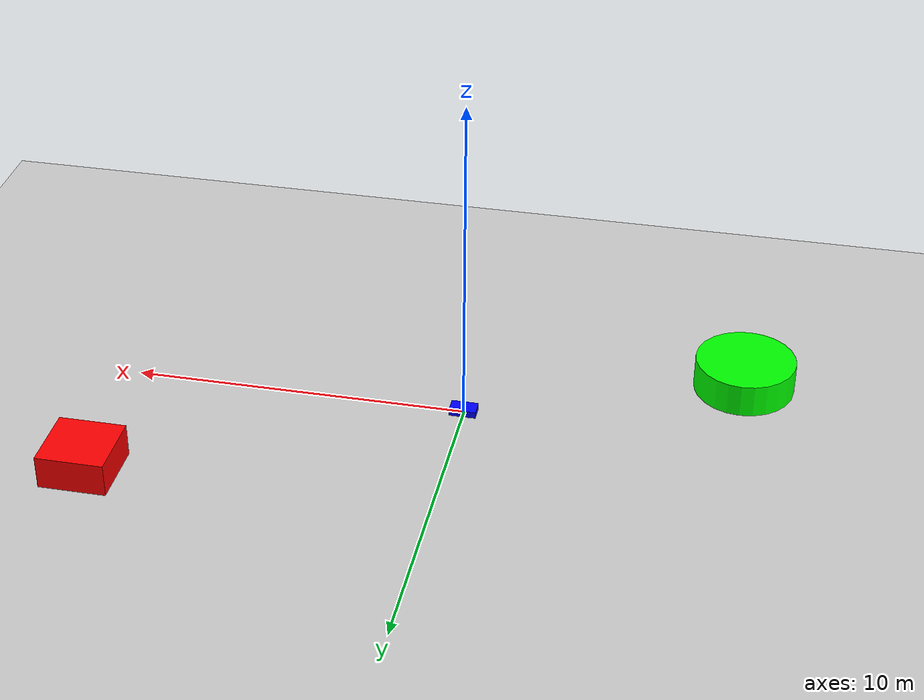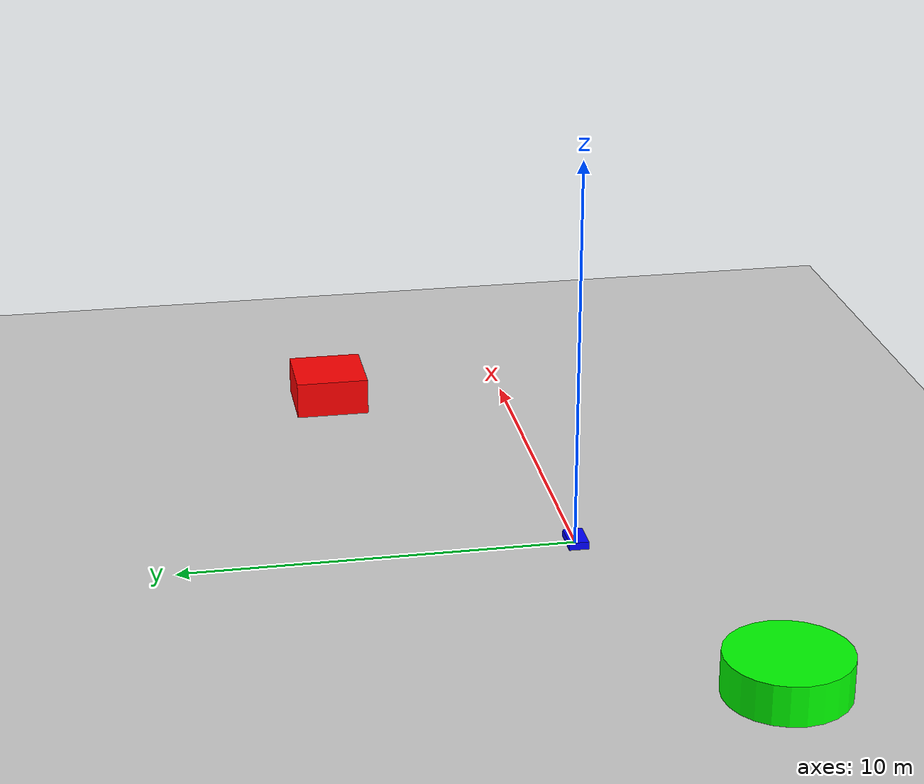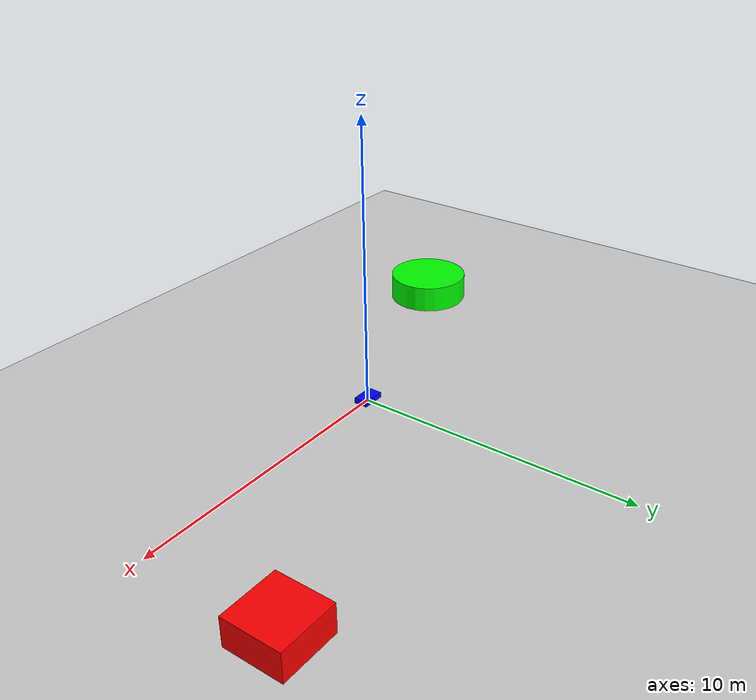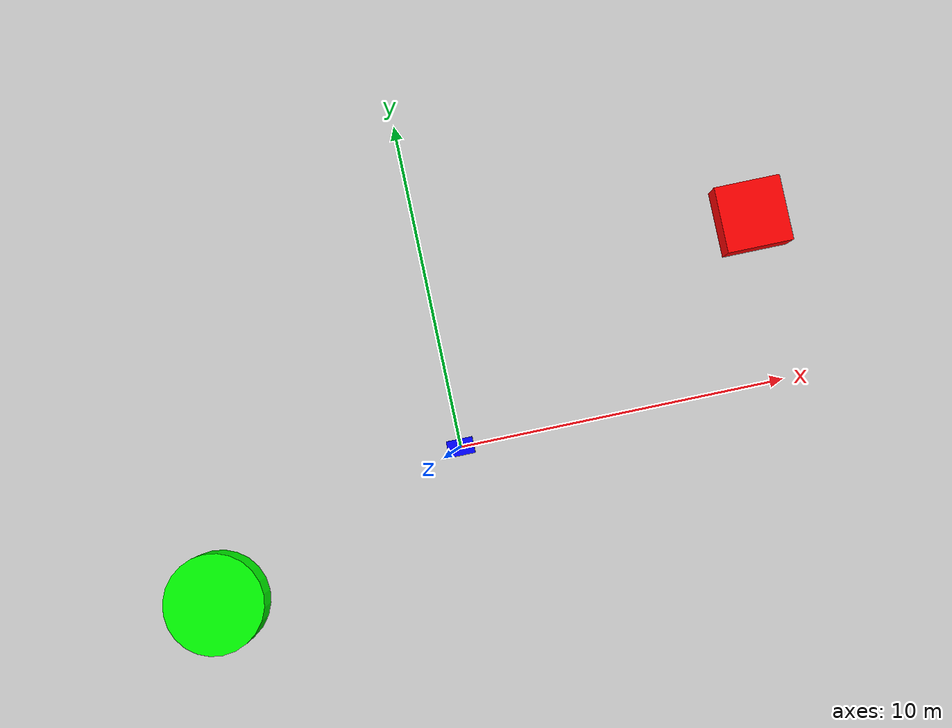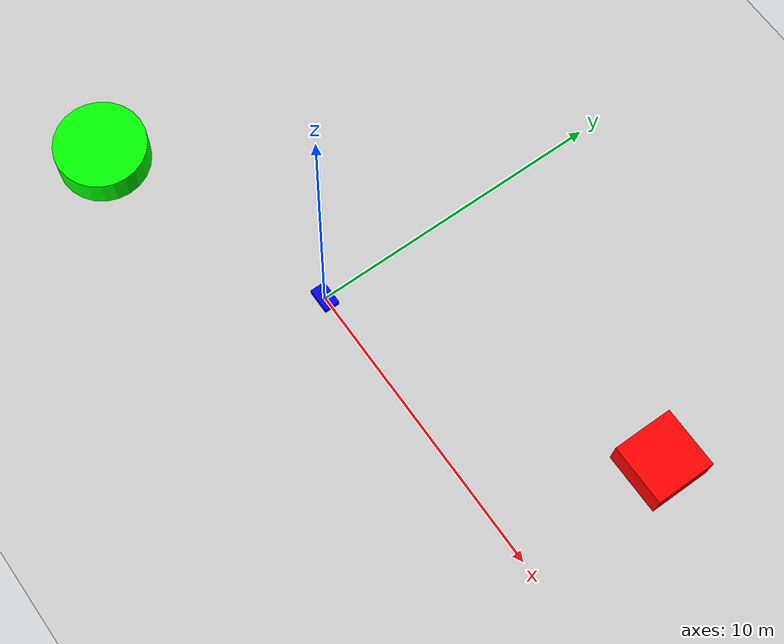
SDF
<?xml version="1.0" ?>
<sdf version="1.8">
    <world name="formation_world">
        <!-- 基础物理设置 -->
        <physics name="1ms" type="ignored">
            <max_step_size>0.001</max_step_size>
            <real_time_factor>1.0</real_time_factor>
        </physics>

        <!-- 插件 -->
        <plugin
            filename="gz-sim-physics-system"
            name="gz::sim::systems::Physics">
        </plugin>
        <plugin
            filename="gz-sim-user-commands-system"
            name="gz::sim::systems::UserCommands">
        </plugin>
        <plugin
            filename="gz-sim-scene-broadcaster-system"
            name="gz::sim::systems::SceneBroadcaster">
        </plugin>
        <plugin
            filename="gz-sim-sensors-system"
            name="gz::sim::systems::Sensors">
            <render_engine>ogre2</render_engine>
        </plugin>

        <!-- 光照 -->
        <light type="directional" name="sun">
            <cast_shadows>true</cast_shadows>
            <pose>0 0 10 0 0 0</pose>
            <diffuse>0.8 0.8 0.8 1</diffuse>
            <specular>0.2 0.2 0.2 1</specular>
            <attenuation>
                <range>1000</range>
                <constant>0.9</constant>
                <linear>0.01</linear>
                <quadratic>0.001</quadratic>
            </attenuation>
            <direction>-0.5 0.1 -0.9</direction>
        </light>

        <!-- 地面 -->
        <model name="ground_plane">
            <static>true</static>
            <link name="link">
                <collision name="collision">
                    <geometry>
                        <plane>
                            <normal>0 0 1</normal>
                            <size>100 100</size>
                        </plane>
                    </geometry>
                </collision>
                <visual name="visual">
                    <geometry>
                        <plane>
                            <normal>0 0 1</normal>
                            <size>100 100</size>
                        </plane>
                    </geometry>
                    <material>
                        <ambient>0.8 0.8 0.8 1</ambient>
                        <diffuse>0.8 0.8 0.8 1</diffuse>
                        <specular>0.8 0.8 0.8 1</specular>
                    </material>
                </visual>
            </link>
        </model>

        <!-- 编队测试障碍物 -->
        <model name="obstacle_1">
            <pose>10 5 0.5 0 0 0</pose>
            <static>true</static>
            <link name="link">
                <collision name="collision">
                    <geometry>
                        <box>
                            <size>2 2 1</size>
                        </box>
                    </geometry>
                </collision>
                <visual name="visual">
                    <geometry>
                        <box>
                            <size>2 2 1</size>
                        </box>
                    </geometry>
                    <material>
                        <ambient>1 0 0 1</ambient>
                        <diffuse>1 0 0 1</diffuse>
                        <specular>1 0 0 1</specular>
                    </material>
                </visual>
            </link>
        </model>

        <model name="obstacle_2">
            <pose>-8 -3 0.5 0 0 0</pose>
            <static>true</static>
            <link name="link">
                <collision name="collision">
                    <geometry>
                        <cylinder>
                            <radius>1.5</radius>
                            <length>1</length>
                        </cylinder>
                    </geometry>
                </collision>
                <visual name="visual">
                    <geometry>
                        <cylinder>
                            <radius>1.5</radius>
                            <length>1</length>
                        </cylinder>
                    </geometry>
                    <material>
                        <ambient>0 1 0 1</ambient>
                        <diffuse>0 1 0 1</diffuse>
                        <specular>0 1 0 1</specular>
                    </material>
                </visual>
            </link>
        </model>

        <!-- 编队车辆模型 -->
        <model name="formation_vehicle">
            <pose>0 0 0.1 0 0 0</pose>
            <link name="base_link">
                <collision name="collision">
                    <geometry>
                        <box>
                            <size>0.8 0.5 0.2</size>
                        </box>
                    </geometry>
                </collision>
                <visual name="visual">
                    <geometry>
                        <box>
                            <size>0.8 0.5 0.2</size>
                        </box>
                    </geometry>
                    <material>
                        <ambient>0 0 1 1</ambient>
                        <diffuse>0 0 1 1</diffuse>
                        <specular>0 0 1 1</specular>
                    </material>
                </visual>
                <inertial>
                    <mass>10</mass>
                    <inertia>
                        <ixx>0.4</ixx>
                        <iyy>0.4</iyy>
                        <izz>0.2</izz>
                    </inertia>
                </inertial>
            </link>

            <!-- 差分驱动插件 -->
            <plugin
                filename="gz-sim-diff-drive-system"
                name="gz::sim::systems::DiffDrive">
                <left_joint>left_wheel_joint</left_joint>
                <right_joint>right_wheel_joint</right_joint>
                <wheel_separation>0.4</wheel_separation>
                <wheel_radius>0.1</wheel_radius>
                <odom_publish_frequency>50</odom_publish_frequency>
                <topic>cmd_vel</topic>
                <odom_topic>odom</odom_topic>
                <frame_id>odom</frame_id>
                <child_frame_id>base_link</child_frame_id>
            </plugin>
        </model>

    </world>
</sdf>
